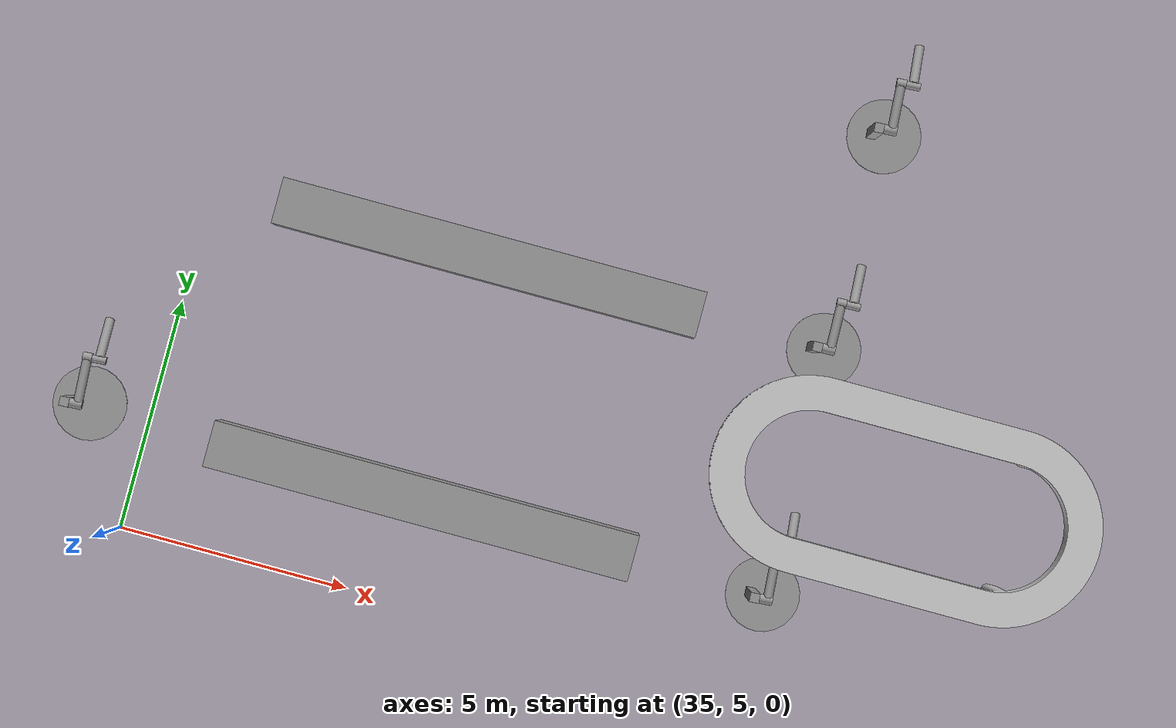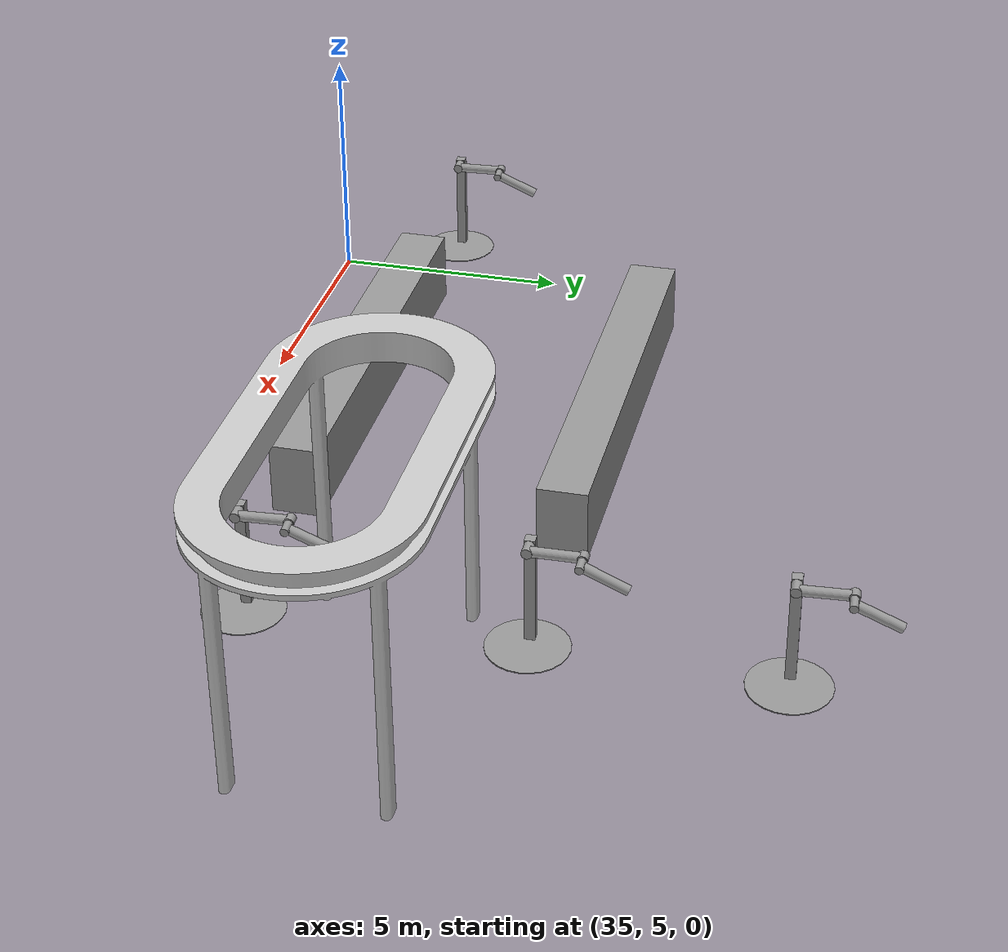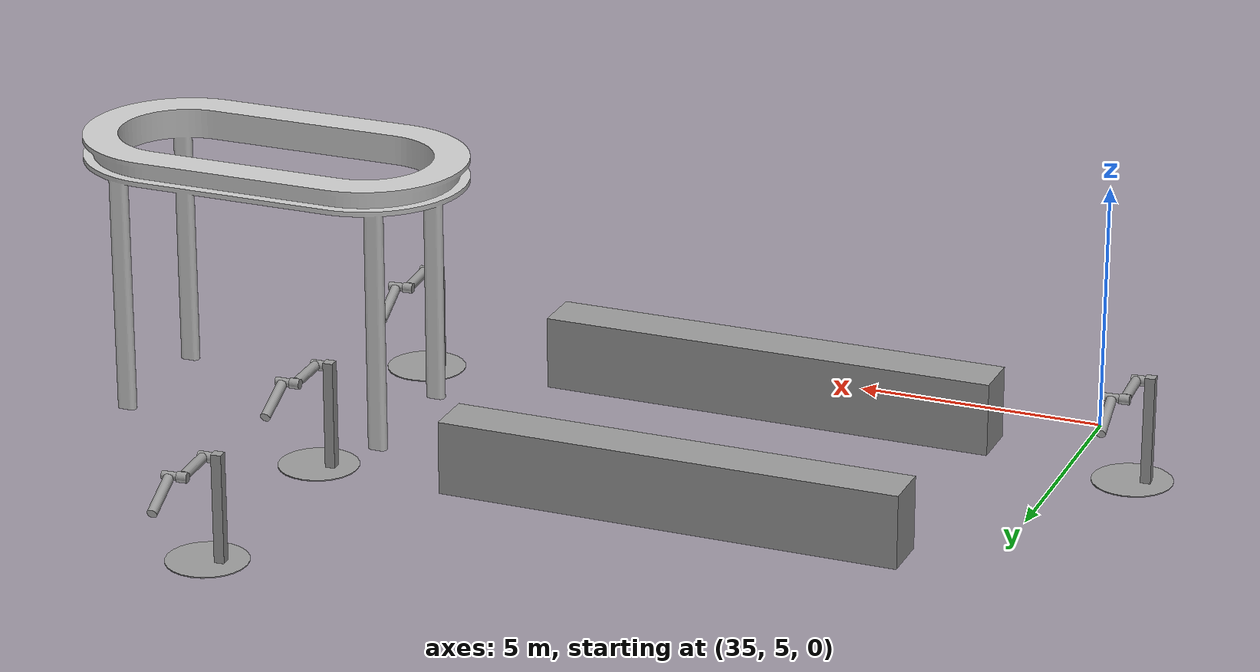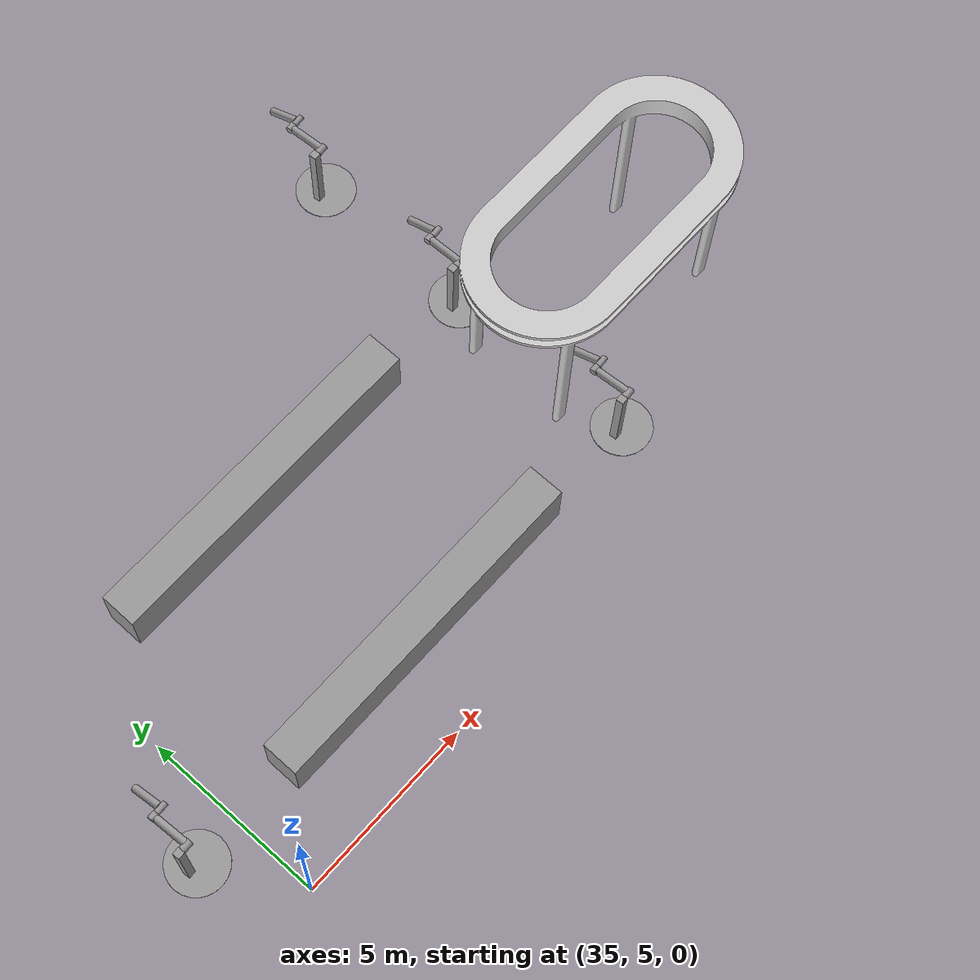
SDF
<sdf version="1.7">
 <world name="factory_ground">
  <model name="cell_clone">
   <static>1</static>
   <pose>48.5633 8 0 0 -0 0</pose>
   <link name="link">
    <inertial>
     <mass>1</mass>
     <inertia><ixx>0.01</ixx><ixy>0</ixy><ixz>0</ixz><iyy>0.01</iyy><iyz>0</iyz><izz>0.01</izz></inertia>
    </inertial>
    <visual name="visual"><geometry><mesh><uri>model://cell/meshes/cell.dae</uri></mesh></geometry></visual>
    <collision name="collision">
     <geometry><mesh><uri>model://cell/meshes/cell.dae</uri><scale>1 1 1</scale></mesh></geometry>
     <surface>
      <friction><ode><mu>1</mu><mu2>1</mu2><fdir1>0 0 0</fdir1><slip1>0</slip1><slip2>0</slip2></ode></friction>
      <bounce><restitution_coefficient>0</restitution_coefficient><threshold>1e+06</threshold></bounce>
      <contact>
       <ode>
        <soft_cfm>0</soft_cfm>
        <soft_erp>0.2</soft_erp>
        <kp>1e+13</kp>
        <kd>1</kd>
        <max_vel>0.01</max_vel>
        <min_depth>0.001</min_depth>
       </ode>
      </contact>
     </surface>
    </collision>
   </link>
   <static>1</static>
  </model>
  <model name="double_pendulum_with_base_clone">
   <link name="base">
    <inertial>
     <mass>100</mass>
     <inertia><ixx>1</ixx><ixy>0</ixy><ixz>0</ixz><iyy>1</iyy><iyz>0</iyz><izz>1</izz></inertia>
    </inertial>
    <visual name="vis_plate_on_ground">
     <pose>0 0 0.01 0 -0 0</pose>
     <geometry><cylinder><radius>0.8</radius><length>0.02</length></cylinder></geometry>
     <material>
      <script><uri>file://media/materials/scripts/gazebo.material</uri><name>Gazebo/Grey</name></script>
     </material>
    </visual>
    <visual name="vis_pole">
     <pose>-0.275 0 1.1 0 -0 0</pose>
     <geometry><box><size>0.2 0.2 2.2</size></box></geometry>
     <material>
      <script><uri>file://media/materials/scripts/gazebo.material</uri><name>Gazebo/Grey</name></script>
     </material>
    </visual>
    <collision name="col_plate_on_ground">
     <pose>0 0 0.01 0 -0 0</pose>
     <geometry><cylinder><radius>0.8</radius><length>0.02</length></cylinder></geometry>
    </collision>
    <collision name="col_pole">
     <pose>-0.275 0 1.1 0 -0 0</pose>
     <geometry><box><size>0.2 0.2 2.2</size></box></geometry>
    </collision>
   </link>
   <link name="upper_link">
    <pose>0 0 2.1 -1.5708 0 0</pose>
    <inertial>
     <pose>0 0 0.5 0 -0 0</pose>
     <inertia><ixx>1</ixx><ixy>0</ixy><ixz>0</ixz><iyy>1</iyy><iyz>0</iyz><izz>1</izz></inertia>
     <mass>1</mass>
    </inertial>
    <visual name="vis_upper_joint">
     <pose>-0.05 0 0 3.14159 1.57079 3.14159</pose>
     <geometry><cylinder><radius>0.1</radius><length>0.3</length></cylinder></geometry>
     <material>
      <script><uri>file://media/materials/scripts/gazebo.material</uri><name>Gazebo/Grey</name></script>
     </material>
    </visual>
    <visual name="vis_lower_joint">
     <pose>0 0 1 3.14159 1.57079 3.14159</pose>
     <geometry><cylinder><radius>0.1</radius><length>0.2</length></cylinder></geometry>
     <material>
      <script><uri>file://media/materials/scripts/gazebo.material</uri><name>Gazebo/Grey</name></script>
     </material>
    </visual>
    <visual name="vis_cylinder">
     <pose>0 0 0.5 0 -0 0</pose>
     <geometry><cylinder><radius>0.1</radius><length>0.9</length></cylinder></geometry>
     <material>
      <script><uri>file://media/materials/scripts/gazebo.material</uri><name>Gazebo/Grey</name></script>
     </material>
    </visual>
    <collision name="col_upper_joint">
     <pose>-0.05 0 0 3.14159 1.57079 3.14159</pose>
     <geometry><cylinder><radius>0.1</radius><length>0.3</length></cylinder></geometry>
    </collision>
    <collision name="col_lower_joint">
     <pose>0 0 1 3.14159 1.57079 3.14159</pose>
     <geometry><cylinder><radius>0.1</radius><length>0.2</length></cylinder></geometry>
    </collision>
    <collision name="col_cylinder">
     <pose>0 0 0.5 0 -0 0</pose>
     <geometry><cylinder><radius>0.1</radius><length>0.9</length></cylinder></geometry>
    </collision>
   </link>
   <link name="lower_link">
    <pose>0.25 1 2.1 -2 0 0</pose>
    <inertial>
     <pose>0 0 0.5 0 -0 0</pose>
     <inertia><ixx>1</ixx><ixy>0</ixy><ixz>0</ixz><iyy>1</iyy><iyz>0</iyz><izz>1</izz></inertia>
     <mass>1</mass>
    </inertial>
    <visual name="vis_lower_joint">
     <pose>0 0 0 3.14159 1.57079 3.14159</pose>
     <geometry><cylinder><radius>0.08</radius><length>0.3</length></cylinder></geometry>
     <material>
      <script><uri>file://media/materials/scripts/gazebo.material</uri><name>Gazebo/Grey</name></script>
     </material>
    </visual>
    <visual name="vis_cylinder">
     <pose>0 0 0.5 0 -0 0</pose>
     <geometry><cylinder><radius>0.1</radius><length>0.9</length></cylinder></geometry>
     <material>
      <script><uri>file://media/materials/scripts/gazebo.material</uri><name>Gazebo/Grey</name></script>
     </material>
    </visual>
    <collision name="col_lower_joint">
     <pose>0 0 0 3.14159 1.57079 3.14159</pose>
     <geometry><cylinder><radius>0.08</radius><length>0.3</length></cylinder></geometry>
    </collision>
    <collision name="col_cylinder">
     <pose>0 0 0.5 0 -0 0</pose>
     <geometry><cylinder><radius>0.1</radius><length>0.9</length></cylinder></geometry>
    </collision>
   </link>
   <joint name="upper_joint" type="revolute">
    <parent>base</parent>
    <child>upper_link</child>
    <axis>
     <xyz>1 0 0</xyz>
     <limit><lower>-1e+16</lower><upper>1e+16</upper></limit>
     <dynamics><spring_reference>0</spring_reference><spring_stiffness>0</spring_stiffness></dynamics>
    </axis>
   </joint>
   <joint name="lower_joint" type="revolute">
    <parent>upper_link</parent>
    <child>lower_link</child>
    <axis>
     <xyz>1 0 0</xyz>
     <limit><lower>-1e+16</lower><upper>1e+16</upper></limit>
     <dynamics><spring_reference>0</spring_reference><spring_stiffness>0</spring_stiffness></dynamics>
    </axis>
   </joint>
   <pose>33.6622 7.38547 0.006781 0.000554 -0.000136 0.055828</pose>
  </model>
  <model name="double_pendulum_with_base_clone_2">
   <link name="base">
    <inertial>
     <mass>100</mass>
     <inertia><ixx>1</ixx><ixy>0</ixy><ixz>0</ixz><iyy>1</iyy><iyz>0</iyz><izz>1</izz></inertia>
    </inertial>
    <visual name="vis_plate_on_ground">
     <pose>0 0 0.01 0 -0 0</pose>
     <geometry><cylinder><radius>0.8</radius><length>0.02</length></cylinder></geometry>
     <material>
      <script><uri>file://media/materials/scripts/gazebo.material</uri><name>Gazebo/Grey</name></script>
     </material>
    </visual>
    <visual name="vis_pole">
     <pose>-0.275 0 1.1 0 -0 0</pose>
     <geometry><box><size>0.2 0.2 2.2</size></box></geometry>
     <material>
      <script><uri>file://media/materials/scripts/gazebo.material</uri><name>Gazebo/Grey</name></script>
     </material>
    </visual>
    <collision name="col_plate_on_ground">
     <pose>0 0 0.01 0 -0 0</pose>
     <geometry><cylinder><radius>0.8</radius><length>0.02</length></cylinder></geometry>
    </collision>
    <collision name="col_pole">
     <pose>-0.275 0 1.1 0 -0 0</pose>
     <geometry><box><size>0.2 0.2 2.2</size></box></geometry>
    </collision>
   </link>
   <link name="upper_link">
    <pose>0 0 2.1 -1.5708 0 0</pose>
    <inertial>
     <pose>0 0 0.5 0 -0 0</pose>
     <inertia><ixx>1</ixx><ixy>0</ixy><ixz>0</ixz><iyy>1</iyy><iyz>0</iyz><izz>1</izz></inertia>
     <mass>1</mass>
    </inertial>
    <visual name="vis_upper_joint">
     <pose>-0.05 0 0 3.14159 1.57079 3.14159</pose>
     <geometry><cylinder><radius>0.1</radius><length>0.3</length></cylinder></geometry>
     <material>
      <script><uri>file://media/materials/scripts/gazebo.material</uri><name>Gazebo/Grey</name></script>
     </material>
    </visual>
    <visual name="vis_lower_joint">
     <pose>0 0 1 3.14159 1.57079 3.14159</pose>
     <geometry><cylinder><radius>0.1</radius><length>0.2</length></cylinder></geometry>
     <material>
      <script><uri>file://media/materials/scripts/gazebo.material</uri><name>Gazebo/Grey</name></script>
     </material>
    </visual>
    <visual name="vis_cylinder">
     <pose>0 0 0.5 0 -0 0</pose>
     <geometry><cylinder><radius>0.1</radius><length>0.9</length></cylinder></geometry>
     <material>
      <script><uri>file://media/materials/scripts/gazebo.material</uri><name>Gazebo/Grey</name></script>
     </material>
    </visual>
    <collision name="col_upper_joint">
     <pose>-0.05 0 0 3.14159 1.57079 3.14159</pose>
     <geometry><cylinder><radius>0.1</radius><length>0.3</length></cylinder></geometry>
    </collision>
    <collision name="col_lower_joint">
     <pose>0 0 1 3.14159 1.57079 3.14159</pose>
     <geometry><cylinder><radius>0.1</radius><length>0.2</length></cylinder></geometry>
    </collision>
    <collision name="col_cylinder">
     <pose>0 0 0.5 0 -0 0</pose>
     <geometry><cylinder><radius>0.1</radius><length>0.9</length></cylinder></geometry>
    </collision>
   </link>
   <link name="lower_link">
    <pose>0.25 1 2.1 -2 0 0</pose>
    <inertial>
     <pose>0 0 0.5 0 -0 0</pose>
     <inertia><ixx>1</ixx><ixy>0</ixy><ixz>0</ixz><iyy>1</iyy><iyz>0</iyz><izz>1</izz></inertia>
     <mass>1</mass>
    </inertial>
    <visual name="vis_lower_joint">
     <pose>0 0 0 3.14159 1.57079 3.14159</pose>
     <geometry><cylinder><radius>0.08</radius><length>0.3</length></cylinder></geometry>
     <material>
      <script><uri>file://media/materials/scripts/gazebo.material</uri><name>Gazebo/Grey</name></script>
     </material>
    </visual>
    <visual name="vis_cylinder">
     <pose>0 0 0.5 0 -0 0</pose>
     <geometry><cylinder><radius>0.1</radius><length>0.9</length></cylinder></geometry>
     <material>
      <script><uri>file://media/materials/scripts/gazebo.material</uri><name>Gazebo/Grey</name></script>
     </material>
    </visual>
    <collision name="col_lower_joint">
     <pose>0 0 0 3.14159 1.57079 3.14159</pose>
     <geometry><cylinder><radius>0.08</radius><length>0.3</length></cylinder></geometry>
    </collision>
    <collision name="col_cylinder">
     <pose>0 0 0.5 0 -0 0</pose>
     <geometry><cylinder><radius>0.1</radius><length>0.9</length></cylinder></geometry>
    </collision>
   </link>
   <joint name="upper_joint" type="revolute">
    <parent>base</parent>
    <child>upper_link</child>
    <axis>
     <xyz>1 0 0</xyz>
     <limit><lower>-1e+16</lower><upper>1e+16</upper></limit>
     <dynamics><spring_reference>0</spring_reference><spring_stiffness>0</spring_stiffness></dynamics>
    </axis>
   </joint>
   <joint name="lower_joint" type="revolute">
    <parent>upper_link</parent>
    <child>lower_link</child>
    <axis>
     <xyz>1 0 0</xyz>
     <limit><lower>-1e+16</lower><upper>1e+16</upper></limit>
     <dynamics><spring_reference>0</spring_reference><spring_stiffness>0</spring_stiffness></dynamics>
    </axis>
   </joint>
   <pose>48.6273 7.22206 0.007956 0.000522 -0.00012 0.070443</pose>
  </model>
  <model name="double_pendulum_with_base_clone_5">
   <link name="base">
    <inertial>
     <mass>100</mass>
     <inertia><ixx>1</ixx><ixy>0</ixy><ixz>0</ixz><iyy>1</iyy><iyz>0</iyz><izz>1</izz></inertia>
    </inertial>
    <visual name="vis_plate_on_ground">
     <pose>0 0 0.01 0 -0 0</pose>
     <geometry><cylinder><radius>0.8</radius><length>0.02</length></cylinder></geometry>
     <material>
      <script><uri>file://media/materials/scripts/gazebo.material</uri><name>Gazebo/Grey</name></script>
     </material>
    </visual>
    <visual name="vis_pole">
     <pose>-0.275 0 1.1 0 -0 0</pose>
     <geometry><box><size>0.2 0.2 2.2</size></box></geometry>
     <material>
      <script><uri>file://media/materials/scripts/gazebo.material</uri><name>Gazebo/Grey</name></script>
     </material>
    </visual>
    <collision name="col_plate_on_ground">
     <pose>0 0 0.01 0 -0 0</pose>
     <geometry><cylinder><radius>0.8</radius><length>0.02</length></cylinder></geometry>
    </collision>
    <collision name="col_pole">
     <pose>-0.275 0 1.1 0 -0 0</pose>
     <geometry><box><size>0.2 0.2 2.2</size></box></geometry>
    </collision>
   </link>
   <link name="upper_link">
    <pose>0 0 2.1 -1.5708 0 0</pose>
    <inertial>
     <pose>0 0 0.5 0 -0 0</pose>
     <inertia><ixx>1</ixx><ixy>0</ixy><ixz>0</ixz><iyy>1</iyy><iyz>0</iyz><izz>1</izz></inertia>
     <mass>1</mass>
    </inertial>
    <visual name="vis_upper_joint">
     <pose>-0.05 0 0 3.14159 1.57079 3.14159</pose>
     <geometry><cylinder><radius>0.1</radius><length>0.3</length></cylinder></geometry>
     <material>
      <script><uri>file://media/materials/scripts/gazebo.material</uri><name>Gazebo/Grey</name></script>
     </material>
    </visual>
    <visual name="vis_lower_joint">
     <pose>0 0 1 3.14159 1.57079 3.14159</pose>
     <geometry><cylinder><radius>0.1</radius><length>0.2</length></cylinder></geometry>
     <material>
      <script><uri>file://media/materials/scripts/gazebo.material</uri><name>Gazebo/Grey</name></script>
     </material>
    </visual>
    <visual name="vis_cylinder">
     <pose>0 0 0.5 0 -0 0</pose>
     <geometry><cylinder><radius>0.1</radius><length>0.9</length></cylinder></geometry>
     <material>
      <script><uri>file://media/materials/scripts/gazebo.material</uri><name>Gazebo/Grey</name></script>
     </material>
    </visual>
    <collision name="col_upper_joint">
     <pose>-0.05 0 0 3.14159 1.57079 3.14159</pose>
     <geometry><cylinder><radius>0.1</radius><length>0.3</length></cylinder></geometry>
    </collision>
    <collision name="col_lower_joint">
     <pose>0 0 1 3.14159 1.57079 3.14159</pose>
     <geometry><cylinder><radius>0.1</radius><length>0.2</length></cylinder></geometry>
    </collision>
    <collision name="col_cylinder">
     <pose>0 0 0.5 0 -0 0</pose>
     <geometry><cylinder><radius>0.1</radius><length>0.9</length></cylinder></geometry>
    </collision>
   </link>
   <link name="lower_link">
    <pose>0.25 1 2.1 -2 0 0</pose>
    <inertial>
     <pose>0 0 0.5 0 -0 0</pose>
     <inertia><ixx>1</ixx><ixy>0</ixy><ixz>0</ixz><iyy>1</iyy><iyz>0</iyz><izz>1</izz></inertia>
     <mass>1</mass>
    </inertial>
    <visual name="vis_lower_joint">
     <pose>0 0 0 3.14159 1.57079 3.14159</pose>
     <geometry><cylinder><radius>0.08</radius><length>0.3</length></cylinder></geometry>
     <material>
      <script><uri>file://media/materials/scripts/gazebo.material</uri><name>Gazebo/Grey</name></script>
     </material>
    </visual>
    <visual name="vis_cylinder">
     <pose>0 0 0.5 0 -0 0</pose>
     <geometry><cylinder><radius>0.1</radius><length>0.9</length></cylinder></geometry>
     <material>
      <script><uri>file://media/materials/scripts/gazebo.material</uri><name>Gazebo/Grey</name></script>
     </material>
    </visual>
    <collision name="col_lower_joint">
     <pose>0 0 0 3.14159 1.57079 3.14159</pose>
     <geometry><cylinder><radius>0.08</radius><length>0.3</length></cylinder></geometry>
    </collision>
    <collision name="col_cylinder">
     <pose>0 0 0.5 0 -0 0</pose>
     <geometry><cylinder><radius>0.1</radius><length>0.9</length></cylinder></geometry>
    </collision>
   </link>
   <joint name="upper_joint" type="revolute">
    <parent>base</parent>
    <child>upper_link</child>
    <axis>
     <xyz>1 0 0</xyz>
     <limit><lower>-1e+16</lower><upper>1e+16</upper></limit>
     <dynamics><spring_reference>0</spring_reference><spring_stiffness>0</spring_stiffness></dynamics>
    </axis>
   </joint>
   <joint name="lower_joint" type="revolute">
    <parent>upper_link</parent>
    <child>lower_link</child>
    <axis>
     <xyz>1 0 0</xyz>
     <limit><lower>-1e+16</lower><upper>1e+16</upper></limit>
     <dynamics><spring_reference>0</spring_reference><spring_stiffness>0</spring_stiffness></dynamics>
    </axis>
   </joint>
   <pose>48.5222 12.6008 0.020762 0.00051 -9.3e-05 0.026313</pose>
  </model>
  <model name="double_pendulum_with_base_clone_6">
   <link name="base">
    <inertial>
     <mass>100</mass>
     <inertia><ixx>1</ixx><ixy>0</ixy><ixz>0</ixz><iyy>1</iyy><iyz>0</iyz><izz>1</izz></inertia>
    </inertial>
    <visual name="vis_plate_on_ground">
     <pose>0 0 0.01 0 -0 0</pose>
     <geometry><cylinder><radius>0.8</radius><length>0.02</length></cylinder></geometry>
     <material>
      <script><uri>file://media/materials/scripts/gazebo.material</uri><name>Gazebo/Grey</name></script>
     </material>
    </visual>
    <visual name="vis_pole">
     <pose>-0.275 0 1.1 0 -0 0</pose>
     <geometry><box><size>0.2 0.2 2.2</size></box></geometry>
     <material>
      <script><uri>file://media/materials/scripts/gazebo.material</uri><name>Gazebo/Grey</name></script>
     </material>
    </visual>
    <collision name="col_plate_on_ground">
     <pose>0 0 0.01 0 -0 0</pose>
     <geometry><cylinder><radius>0.8</radius><length>0.02</length></cylinder></geometry>
    </collision>
    <collision name="col_pole">
     <pose>-0.275 0 1.1 0 -0 0</pose>
     <geometry><box><size>0.2 0.2 2.2</size></box></geometry>
    </collision>
   </link>
   <link name="upper_link">
    <pose>0 0 2.1 -1.5708 0 0</pose>
    <inertial>
     <pose>0 0 0.5 0 -0 0</pose>
     <inertia><ixx>1</ixx><ixy>0</ixy><ixz>0</ixz><iyy>1</iyy><iyz>0</iyz><izz>1</izz></inertia>
     <mass>1</mass>
    </inertial>
    <visual name="vis_upper_joint">
     <pose>-0.05 0 0 3.14159 1.57079 3.14159</pose>
     <geometry><cylinder><radius>0.1</radius><length>0.3</length></cylinder></geometry>
     <material>
      <script><uri>file://media/materials/scripts/gazebo.material</uri><name>Gazebo/Grey</name></script>
     </material>
    </visual>
    <visual name="vis_lower_joint">
     <pose>0 0 1 3.14159 1.57079 3.14159</pose>
     <geometry><cylinder><radius>0.1</radius><length>0.2</length></cylinder></geometry>
     <material>
      <script><uri>file://media/materials/scripts/gazebo.material</uri><name>Gazebo/Grey</name></script>
     </material>
    </visual>
    <visual name="vis_cylinder">
     <pose>0 0 0.5 0 -0 0</pose>
     <geometry><cylinder><radius>0.1</radius><length>0.9</length></cylinder></geometry>
     <material>
      <script><uri>file://media/materials/scripts/gazebo.material</uri><name>Gazebo/Grey</name></script>
     </material>
    </visual>
    <collision name="col_upper_joint">
     <pose>-0.05 0 0 3.14159 1.57079 3.14159</pose>
     <geometry><cylinder><radius>0.1</radius><length>0.3</length></cylinder></geometry>
    </collision>
    <collision name="col_lower_joint">
     <pose>0 0 1 3.14159 1.57079 3.14159</pose>
     <geometry><cylinder><radius>0.1</radius><length>0.2</length></cylinder></geometry>
    </collision>
    <collision name="col_cylinder">
     <pose>0 0 0.5 0 -0 0</pose>
     <geometry><cylinder><radius>0.1</radius><length>0.9</length></cylinder></geometry>
    </collision>
   </link>
   <link name="lower_link">
    <pose>0.25 1 2.1 -2 0 0</pose>
    <inertial>
     <pose>0 0 0.5 0 -0 0</pose>
     <inertia><ixx>1</ixx><ixy>0</ixy><ixz>0</ixz><iyy>1</iyy><iyz>0</iyz><izz>1</izz></inertia>
     <mass>1</mass>
    </inertial>
    <visual name="vis_lower_joint">
     <pose>0 0 0 3.14159 1.57079 3.14159</pose>
     <geometry><cylinder><radius>0.08</radius><length>0.3</length></cylinder></geometry>
     <material>
      <script><uri>file://media/materials/scripts/gazebo.material</uri><name>Gazebo/Grey</name></script>
     </material>
    </visual>
    <visual name="vis_cylinder">
     <pose>0 0 0.5 0 -0 0</pose>
     <geometry><cylinder><radius>0.1</radius><length>0.9</length></cylinder></geometry>
     <material>
      <script><uri>file://media/materials/scripts/gazebo.material</uri><name>Gazebo/Grey</name></script>
     </material>
    </visual>
    <collision name="col_lower_joint">
     <pose>0 0 0 3.14159 1.57079 3.14159</pose>
     <geometry><cylinder><radius>0.08</radius><length>0.3</length></cylinder></geometry>
    </collision>
    <collision name="col_cylinder">
     <pose>0 0 0.5 0 -0 0</pose>
     <geometry><cylinder><radius>0.1</radius><length>0.9</length></cylinder></geometry>
    </collision>
   </link>
   <joint name="upper_joint" type="revolute">
    <parent>base</parent>
    <child>upper_link</child>
    <axis>
     <xyz>1 0 0</xyz>
     <limit><lower>-1e+16</lower><upper>1e+16</upper></limit>
     <dynamics><spring_reference>0</spring_reference><spring_stiffness>0</spring_stiffness></dynamics>
    </axis>
   </joint>
   <joint name="lower_joint" type="revolute">
    <parent>upper_link</parent>
    <child>lower_link</child>
    <axis>
     <xyz>1 0 0</xyz>
     <limit><lower>-1e+16</lower><upper>1e+16</upper></limit>
     <dynamics><spring_reference>0</spring_reference><spring_stiffness>0</spring_stiffness></dynamics>
    </axis>
   </joint>
   <pose>48.5649 17.3565 0.013266 0.00051 -0.000108 0.067123</pose>
  </model>
  <model name="Untitled_machine_clone">
   <link name="link_0">
    <inertial>
     <mass>13.6418</mass>
     <inertia><ixx>3.61739</ixx><ixy>0</ixy><ixz>0</ixz><iyy>99.4367</iyy><iyz>0</iyz><izz>98.093</izz></inertia>
    </inertial>
    <pose>0.017385 2.65414 -0.076436 0 -0 0</pose>
    <visual name="visual">
     <geometry><box><size>9.23513 1 1.47717</size></box></geometry>
     <material>
      <lighting>1</lighting>
      <script><uri>file://media/materials/scripts/gazebo.material</uri><name>Gazebo/Grey</name></script>
      <shader type="pixel"/>
     </material>
    </visual>
    <collision name="collision">
     <geometry><box><size>9.23513 1 1.47717</size></box></geometry>
     <surface>
      <friction>
       <ode><mu>1</mu><mu2>1</mu2><fdir1>0 0 0</fdir1><slip1>0</slip1><slip2>0</slip2></ode>
       <torsional>
        <coefficient>1</coefficient>
        <patch_radius>0</patch_radius>
        <surface_radius>0</surface_radius>
        <use_patch_radius>1</use_patch_radius>
        <ode><slip>0</slip></ode>
       </torsional>
      </friction>
      <bounce><restitution_coefficient>0</restitution_coefficient><threshold>1e+06</threshold></bounce>
      <contact>
       <collide_without_contact>0</collide_without_contact>
       <collide_without_contact_bitmask>1</collide_without_contact_bitmask>
       <collide_bitmask>1</collide_bitmask>
       <ode>
        <soft_cfm>0</soft_cfm>
        <soft_erp>0.2</soft_erp>
        <kp>1e+13</kp>
        <kd>1</kd>
        <max_vel>0.01</max_vel>
        <min_depth>0</min_depth>
       </ode>
       <bullet>
        <split_impulse>1</split_impulse>
        <split_impulse_penetration_threshold>-0.01</split_impulse_penetration_threshold>
        <soft_cfm>0</soft_cfm>
        <soft_erp>0.2</soft_erp>
        <kp>1e+13</kp>
        <kd>1</kd>
       </bullet>
      </contact>
     </surface>
    </collision>
   </link>
   <link name="link_0_clone">
    <inertial>
     <mass>13.6418</mass>
     <inertia><ixx>3.61739</ixx><ixy>0</ixy><ixz>0</ixz><iyy>99.4367</iyy><iyz>0</iyz><izz>98.093</izz></inertia>
    </inertial>
    <pose>-0.017302 -2.65407 0.076436 0 -0 0</pose>
    <visual name="visual">
     <geometry><box><size>9.23513 1 1.47717</size></box></geometry>
     <material>
      <lighting>1</lighting>
      <script><uri>file://media/materials/scripts/gazebo.material</uri><name>Gazebo/Grey</name></script>
      <shader type="pixel"/>
     </material>
    </visual>
    <collision name="collision">
     <geometry><box><size>9.23513 1 1.47717</size></box></geometry>
     <surface>
      <friction>
       <ode><mu>1</mu><mu2>1</mu2><fdir1>0 0 0</fdir1><slip1>0</slip1><slip2>0</slip2></ode>
       <torsional>
        <coefficient>1</coefficient>
        <patch_radius>0</patch_radius>
        <surface_radius>0</surface_radius>
        <use_patch_radius>1</use_patch_radius>
        <ode><slip>0</slip></ode>
       </torsional>
      </friction>
      <bounce><restitution_coefficient>0</restitution_coefficient><threshold>1e+06</threshold></bounce>
      <contact>
       <collide_without_contact>0</collide_without_contact>
       <collide_without_contact_bitmask>1</collide_without_contact_bitmask>
       <collide_bitmask>1</collide_bitmask>
       <ode>
        <soft_cfm>0</soft_cfm>
        <soft_erp>0.2</soft_erp>
        <kp>1e+13</kp>
        <kd>1</kd>
        <max_vel>0.01</max_vel>
        <min_depth>0</min_depth>
       </ode>
       <bullet>
        <split_impulse>1</split_impulse>
        <split_impulse_penetration_threshold>-0.01</split_impulse_penetration_threshold>
        <soft_cfm>0</soft_cfm>
        <soft_erp>0.2</soft_erp>
        <kp>1e+13</kp>
        <kd>1</kd>
       </bullet>
      </contact>
     </surface>
    </collision>
   </link>
   <static>0</static>
   <pose>41.1146 9.95101 0.899557 0 -0 0</pose>
  </model>
 </world>
</sdf>
